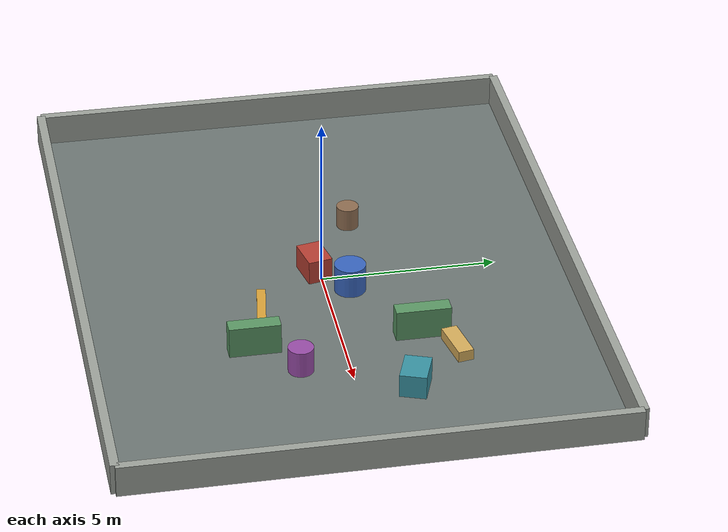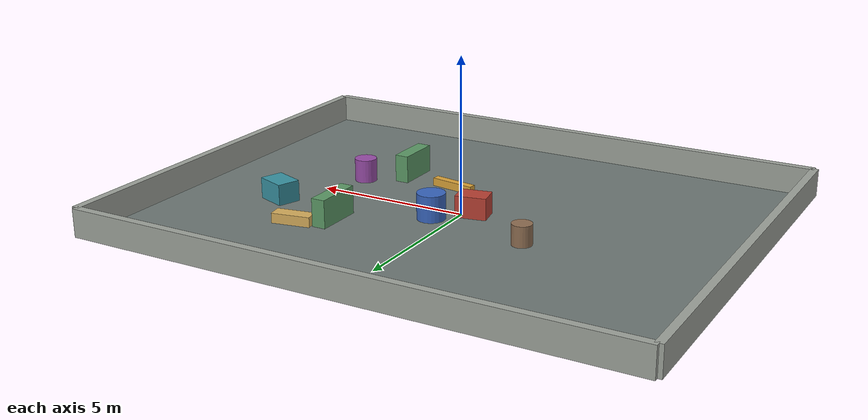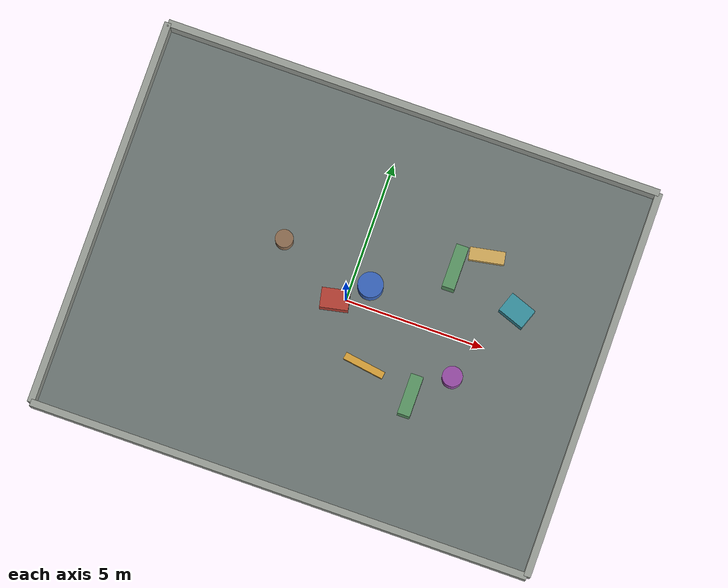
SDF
<?xml version="1.0"?>
<sdf version="1.7">
  <world name="d435i_vision_test_world">
    <physics type="ode">
      <max_step_size>0.002</max_step_size>
      <real_time_update_rate>500</real_time_update_rate>
      <real_time_factor>1</real_time_factor>
    </physics>

    <include>
      <uri>model://sun</uri>
    </include>

    <model name="vision_ground">
      <static>true</static>
      <pose>0 0 -0.01 0 0 0</pose>
      <link name="link">
        <collision name="collision">
          <geometry>
            <box>
              <size>18 14 0.02</size>
            </box>
          </geometry>
        </collision>
        <visual name="visual">
          <geometry>
            <box>
              <size>18 14 0.02</size>
            </box>
          </geometry>
          <material>
            <ambient>0.34 0.38 0.37 1</ambient>
            <diffuse>0.43 0.47 0.46 1</diffuse>
          </material>
        </visual>
      </link>
    </model>

    <model name="north_wall">
      <static>true</static>
      <pose>0 7 0.45 0 0 0</pose>
      <link name="link">
        <collision name="collision">
          <geometry>
            <box>
              <size>18 0.25 0.9</size>
            </box>
          </geometry>
        </collision>
        <visual name="visual">
          <geometry>
            <box>
              <size>18 0.25 0.9</size>
            </box>
          </geometry>
          <material>
            <ambient>0.55 0.57 0.55 1</ambient>
            <diffuse>0.62 0.64 0.61 1</diffuse>
          </material>
        </visual>
      </link>
    </model>
    <model name="south_wall">
      <static>true</static>
      <pose>0 -7 0.45 0 0 0</pose>
      <link name="link">
        <collision name="collision">
          <geometry>
            <box>
              <size>18 0.25 0.9</size>
            </box>
          </geometry>
        </collision>
        <visual name="visual">
          <geometry>
            <box>
              <size>18 0.25 0.9</size>
            </box>
          </geometry>
          <material>
            <ambient>0.55 0.57 0.55 1</ambient>
            <diffuse>0.62 0.64 0.61 1</diffuse>
          </material>
        </visual>
      </link>
    </model>
    <model name="east_wall">
      <static>true</static>
      <pose>9 0 0.45 0 0 0</pose>
      <link name="link">
        <collision name="collision">
          <geometry>
            <box>
              <size>0.25 14 0.9</size>
            </box>
          </geometry>
        </collision>
        <visual name="visual">
          <geometry>
            <box>
              <size>0.25 14 0.9</size>
            </box>
          </geometry>
          <material>
            <ambient>0.55 0.57 0.55 1</ambient>
            <diffuse>0.62 0.64 0.61 1</diffuse>
          </material>
        </visual>
      </link>
    </model>
    <model name="west_wall">
      <static>true</static>
      <pose>-9 0 0.45 0 0 0</pose>
      <link name="link">
        <collision name="collision">
          <geometry>
            <box>
              <size>0.25 14 0.9</size>
            </box>
          </geometry>
        </collision>
        <visual name="visual">
          <geometry>
            <box>
              <size>0.25 14 0.9</size>
            </box>
          </geometry>
          <material>
            <ambient>0.55 0.57 0.55 1</ambient>
            <diffuse>0.62 0.64 0.61 1</diffuse>
          </material>
        </visual>
      </link>
    </model>

    <model name="front_box_cluster">
      <static>true</static>
      <pose>-0.35 -0.15 0.35 0 0 0.20</pose>
      <link name="link">
        <collision name="collision">
          <geometry>
            <box>
              <size>1.0 0.70 0.70</size>
            </box>
          </geometry>
        </collision>
        <visual name="visual">
          <geometry>
            <box>
              <size>1.0 0.70 0.70</size>
            </box>
          </geometry>
          <material>
            <ambient>0.62 0.20 0.18 1</ambient>
            <diffuse>0.72 0.25 0.20 1</diffuse>
          </material>
        </visual>
      </link>
    </model>

    <model name="center_round_obstacle">
      <static>true</static>
      <pose>0.65 0.70 0.42 0 0 0</pose>
      <link name="link">
        <collision name="collision">
          <geometry>
            <cylinder>
              <radius>0.45</radius>
              <length>0.84</length>
            </cylinder>
          </geometry>
        </collision>
        <visual name="visual">
          <geometry>
            <cylinder>
              <radius>0.45</radius>
              <length>0.84</length>
            </cylinder>
          </geometry>
          <material>
            <ambient>0.18 0.33 0.62 1</ambient>
            <diffuse>0.22 0.40 0.75 1</diffuse>
          </material>
        </visual>
      </link>
    </model>

    <model name="low_front_barrier">
      <static>true</static>
      <pose>1.35 -1.95 0.13 0 0 -0.15</pose>
      <link name="link">
        <collision name="collision">
          <geometry>
            <box>
              <size>1.5 0.25 0.26</size>
            </box>
          </geometry>
        </collision>
        <visual name="visual">
          <geometry>
            <box>
              <size>1.5 0.25 0.26</size>
            </box>
          </geometry>
          <material>
            <ambient>0.74 0.54 0.18 1</ambient>
            <diffuse>0.86 0.64 0.22 1</diffuse>
          </material>
        </visual>
      </link>
    </model>

    <model name="narrow_passage_left_wall">
      <static>true</static>
      <pose>3.20 -2.45 0.45 0 0 0</pose>
      <link name="link">
        <collision name="collision">
          <geometry>
            <box>
              <size>0.45 1.45 0.9</size>
            </box>
          </geometry>
        </collision>
        <visual name="visual">
          <geometry>
            <box>
              <size>0.45 1.45 0.9</size>
            </box>
          </geometry>
          <material>
            <ambient>0.30 0.50 0.32 1</ambient>
            <diffuse>0.36 0.60 0.40 1</diffuse>
          </material>
        </visual>
      </link>
    </model>
    <model name="narrow_passage_right_wall">
      <static>true</static>
      <pose>3.20 2.25 0.45 0 0 0</pose>
      <link name="link">
        <collision name="collision">
          <geometry>
            <box>
              <size>0.45 1.55 0.9</size>
            </box>
          </geometry>
        </collision>
        <visual name="visual">
          <geometry>
            <box>
              <size>0.45 1.55 0.9</size>
            </box>
          </geometry>
          <material>
            <ambient>0.30 0.50 0.32 1</ambient>
            <diffuse>0.36 0.60 0.40 1</diffuse>
          </material>
        </visual>
      </link>
    </model>

    <model name="right_lane_cylinder">
      <static>true</static>
      <pose>4.35 -1.35 0.38 0 0 0</pose>
      <link name="link">
        <collision name="collision">
          <geometry>
            <cylinder>
              <radius>0.36</radius>
              <length>0.76</length>
            </cylinder>
          </geometry>
        </collision>
        <visual name="visual">
          <geometry>
            <cylinder>
              <radius>0.36</radius>
              <length>0.76</length>
            </cylinder>
          </geometry>
          <material>
            <ambient>0.50 0.24 0.56 1</ambient>
            <diffuse>0.60 0.30 0.66 1</diffuse>
          </material>
        </visual>
      </link>
    </model>

    <model name="goal_lane_box">
      <static>true</static>
      <pose>5.70 1.55 0.34 0 0 -0.35</pose>
      <link name="link">
        <collision name="collision">
          <geometry>
            <box>
              <size>1.0 0.75 0.68</size>
            </box>
          </geometry>
        </collision>
        <visual name="visual">
          <geometry>
            <box>
              <size>1.0 0.75 0.68</size>
            </box>
          </geometry>
          <material>
            <ambient>0.18 0.48 0.52 1</ambient>
            <diffuse>0.22 0.58 0.64 1</diffuse>
          </material>
        </visual>
      </link>
    </model>

    <model name="low_goal_block">
      <static>true</static>
      <pose>4.10 3.05 0.16 0 0 0.18</pose>
      <link name="link">
        <collision name="collision">
          <geometry>
            <box>
              <size>1.25 0.45 0.32</size>
            </box>
          </geometry>
        </collision>
        <visual name="visual">
          <geometry>
            <box>
              <size>1.25 0.45 0.32</size>
            </box>
          </geometry>
          <material>
            <ambient>0.74 0.58 0.30 1</ambient>
            <diffuse>0.84 0.68 0.36 1</diffuse>
          </material>
        </visual>
      </link>
    </model>

    <model name="left_reference_column">
      <static>true</static>
      <pose>-2.70 1.25 0.33 0 0 0</pose>
      <link name="link">
        <collision name="collision">
          <geometry>
            <cylinder>
              <radius>0.32</radius>
              <length>0.66</length>
            </cylinder>
          </geometry>
        </collision>
        <visual name="visual">
          <geometry>
            <cylinder>
              <radius>0.32</radius>
              <length>0.66</length>
            </cylinder>
          </geometry>
          <material>
            <ambient>0.46 0.35 0.26 1</ambient>
            <diffuse>0.56 0.43 0.32 1</diffuse>
          </material>
        </visual>
      </link>
    </model>

    <gravity>0 0 -9.8</gravity>
    <magnetic_field>6e-06 2.3e-05 -4.2e-05</magnetic_field>
    <atmosphere type="adiabatic"/>
    <scene>
      <ambient>0.42 0.42 0.42 1</ambient>
      <background>0.70 0.72 0.74 1</background>
      <shadows>true</shadows>
    </scene>
  </world>
</sdf>
